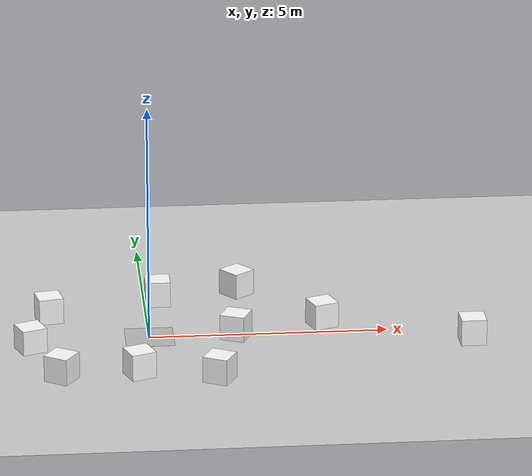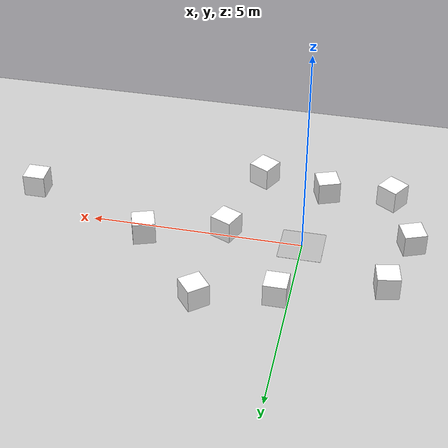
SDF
<sdf version="1.6">
 <world name="default">
  <light name="sun" type="directional">
   <pose>0 0 10 0 -0 0</pose>
   <diffuse>0.8 0.8 0.8 1</diffuse>
   <specular>0.1 0.1 0.1 1</specular>
   <attenuation>
    <range>1000</range>
    <constant>0.9</constant>
    <linear>0.01</linear>
    <quadratic>0.001</quadratic>
   </attenuation>
   <direction>-0.5 0.5 -1</direction>
  </light>
  <plugin name="SetupWorld" filename="libgazebo_plugins.so"/>
  <gravity>0 0 -9.8</gravity>
  <magnetic_field>6e-06 2.3e-05 -4.2e-05</magnetic_field>
  <atmosphere type="adiabatic"/>
  <physics name="default_physics" default="0" type="ode">
   <max_step_size>0.001</max_step_size>
   <real_time_factor>1</real_time_factor>
   <real_time_update_rate>1000</real_time_update_rate>
  </physics>
  <scene><ambient>0.4 0.4 0.4 1</ambient><background>0.7 0.7 0.7 1</background><shadows>1</shadows></scene>
  <spherical_coordinates>
   <surface_model>EARTH_WGS84</surface_model>
   <latitude_deg>0</latitude_deg>
   <longitude_deg>0</longitude_deg>
   <elevation>0</elevation>
   <heading_deg>0</heading_deg>
  </spherical_coordinates>
  <model name="collection_disk">
   <static>1</static>
   <link name="link">
    <visual name="visual">
     <geometry><box><size>1.016 1.016 0.001</size></box></geometry>
     <material>
      <script>
       <uri>model://collection_disk/materials/scripts</uri>
       <uri>model://collection_disk/materials/textures</uri>
       <name>collection_disk/Diffuse</name>
      </script>
     </material>
    </visual>
   </link>
   <plugin name="score_sim" filename="libgazebo_plugins_score.so">
    <scoreTopic>/collectionZone/score</scoreTopic>
    <collectionZoneSquareSize>1.016</collectionZoneSquareSize>
    <updateRate>0.2</updateRate>
    <robotNamespace>/</robotNamespace>
   </plugin>
  </model>
  <model name="mars_ground_plane">
   <static>1</static>
   <link name="link">
    <collision name="collision">
     <geometry><plane><normal>0 0 1</normal><size>100 100</size></plane></geometry>
     <surface><friction><ode><mu>100</mu><mu2>50</mu2></ode></friction></surface>
    </collision>
    <visual name="visual">
     <cast_shadows>0</cast_shadows>
     <geometry><plane><normal>0 0 1</normal><size>100 100</size></plane></geometry>
     <material>
      <script>
       <uri>model://media/materials/scripts</uri>
       <uri>model://media/materials/textures</uri>
       <name>MarsGroundPlane/Image</name>
      </script>
     </material>
    </visual>
   </link>
   <pose>0.292591 4.23558 0 0 -0 0</pose>
  </model>
  <model name="at0_2_0">
   <link name="link">
    <inertial>
     <mass>0.01</mass>
     <inertia><ixx>4e-05</ixx><ixy>0</ixy><ixz>0</ixz><iyy>4e-05</iyy><iyz>0</iyz><izz>4e-05</izz></inertia>
    </inertial>
    <visual name="visual">
     <geometry><box><size>0.5 0.5 0.5</size></box></geometry>
     <material>
      <script>
       <uri>model://at0/materials/scripts</uri>
       <uri>model://at0/materials/textures</uri>
       <name>at0/Diffuse</name>
      </script>
      <ambient>1 1 1 1</ambient>
      <diffuse>1 1 1 1</diffuse>
      <specular>0 0 0 1</specular>
      <emissive>0 0 0 1</emissive>
      <shader type="vertex"><normal_map>__default__</normal_map></shader>
     </material>
    </visual>
    <visual name="ModelPreview_8::link::visual_2">
     <geometry><box><size>0.528063 0.520416 0.556558</size></box></geometry>
     <material>
      <script>
       <uri>model://at0/materials/scripts</uri>
       <uri>model://at0/materials/textures</uri>
       <name>at0/Diffuse</name>
      </script>
      <ambient>1 1 1 1</ambient>
      <diffuse>1 1 1 1</diffuse>
      <specular>0 0 0 1</specular>
      <emissive>0 0 0 1</emissive>
      <shader type="vertex"><normal_map>__default__</normal_map></shader>
     </material>
    </visual>
    <visual name="ModelPreview_8::link::visual_3">
     <geometry><box><size>0.528063 0.520416 0.556558</size></box></geometry>
     <material>
      <script>
       <uri>model://at0/materials/scripts</uri>
       <uri>model://at0/materials/textures</uri>
       <name>at0/Diffuse</name>
      </script>
      <ambient>1 1 1 1</ambient>
      <diffuse>1 1 1 1</diffuse>
      <specular>0 0 0 1</specular>
      <emissive>0 0 0 1</emissive>
      <shader type="vertex"><normal_map>__default__</normal_map></shader>
     </material>
    </visual>
    <visual name="ModelPreview_8::link::visual_1">
     <geometry><box><size>0.528063 0.520416 0.556558</size></box></geometry>
     <material>
      <script>
       <uri>model://at0/materials/scripts</uri>
       <uri>model://at0/materials/textures</uri>
       <name>at0/Diffuse</name>
      </script>
      <ambient>1 1 1 1</ambient>
      <diffuse>1 1 1 1</diffuse>
      <specular>0 0 0 1</specular>
      <emissive>0 0 0 1</emissive>
      <shader type="vertex"><normal_map>__default__</normal_map></shader>
     </material>
    </visual>
    <collision name="collision">
     <geometry><box><size>0.5 0.5 0.5</size></box></geometry>
     <surface>
      <friction>
       <ode><mu>0.8</mu><mu2>0.7</mu2><fdir1>0 0 0</fdir1><slip1>0</slip1><slip2>0</slip2></ode>
       <torsional>
        <coefficient>1</coefficient>
        <patch_radius>0</patch_radius>
        <surface_radius>0</surface_radius>
        <use_patch_radius>1</use_patch_radius>
        <ode><slip>0</slip></ode>
       </torsional>
      </friction>
      <bounce><restitution_coefficient>0</restitution_coefficient><threshold>1e+06</threshold></bounce>
      <contact>
       <collide_without_contact>0</collide_without_contact>
       <collide_without_contact_bitmask>1</collide_without_contact_bitmask>
       <collide_bitmask>1</collide_bitmask>
       <ode>
        <soft_cfm>0</soft_cfm>
        <soft_erp>0.2</soft_erp>
        <kp>1e+13</kp>
        <kd>1</kd>
        <max_vel>0.01</max_vel>
        <min_depth>0</min_depth>
       </ode>
       <bullet>
        <split_impulse>1</split_impulse>
        <split_impulse_penetration_threshold>-0.01</split_impulse_penetration_threshold>
        <soft_cfm>0</soft_cfm>
        <soft_erp>0.2</soft_erp>
        <kp>1e+13</kp>
        <kd>1</kd>
       </bullet>
      </contact>
     </surface>
    </collision>
   </link>
   <static>0</static>
   <pose>-2.0593 1.17237 0.267923 0 0 -1.382</pose>
  </model>
  <model name="at0_2_1">
   <link name="link">
    <inertial>
     <mass>0.01</mass>
     <inertia><ixx>4e-05</ixx><ixy>0</ixy><ixz>0</ixz><iyy>4e-05</iyy><iyz>0</iyz><izz>4e-05</izz></inertia>
    </inertial>
    <visual name="visual">
     <geometry><box><size>0.5 0.5 0.5</size></box></geometry>
     <material>
      <script>
       <uri>model://at0/materials/scripts</uri>
       <uri>model://at0/materials/textures</uri>
       <name>at0/Diffuse</name>
      </script>
      <ambient>1 1 1 1</ambient>
      <diffuse>1 1 1 1</diffuse>
      <specular>0 0 0 1</specular>
      <emissive>0 0 0 1</emissive>
      <shader type="vertex"><normal_map>__default__</normal_map></shader>
     </material>
    </visual>
    <visual name="ModelPreview_8::link::visual_2">
     <geometry><box><size>0.528063 0.520416 0.556558</size></box></geometry>
     <material>
      <script>
       <uri>model://at0/materials/scripts</uri>
       <uri>model://at0/materials/textures</uri>
       <name>at0/Diffuse</name>
      </script>
      <ambient>1 1 1 1</ambient>
      <diffuse>1 1 1 1</diffuse>
      <specular>0 0 0 1</specular>
      <emissive>0 0 0 1</emissive>
      <shader type="vertex"><normal_map>__default__</normal_map></shader>
     </material>
    </visual>
    <visual name="ModelPreview_8::link::visual_3">
     <geometry><box><size>0.528063 0.520416 0.556558</size></box></geometry>
     <material>
      <script>
       <uri>model://at0/materials/scripts</uri>
       <uri>model://at0/materials/textures</uri>
       <name>at0/Diffuse</name>
      </script>
      <ambient>1 1 1 1</ambient>
      <diffuse>1 1 1 1</diffuse>
      <specular>0 0 0 1</specular>
      <emissive>0 0 0 1</emissive>
      <shader type="vertex"><normal_map>__default__</normal_map></shader>
     </material>
    </visual>
    <visual name="ModelPreview_8::link::visual_1">
     <geometry><box><size>0.528063 0.520416 0.556558</size></box></geometry>
     <material>
      <script>
       <uri>model://at0/materials/scripts</uri>
       <uri>model://at0/materials/textures</uri>
       <name>at0/Diffuse</name>
      </script>
      <ambient>1 1 1 1</ambient>
      <diffuse>1 1 1 1</diffuse>
      <specular>0 0 0 1</specular>
      <emissive>0 0 0 1</emissive>
      <shader type="vertex"><normal_map>__default__</normal_map></shader>
     </material>
    </visual>
    <collision name="collision">
     <geometry><box><size>0.5 0.5 0.5</size></box></geometry>
     <surface>
      <friction>
       <ode><mu>0.8</mu><mu2>0.7</mu2><fdir1>0 0 0</fdir1><slip1>0</slip1><slip2>0</slip2></ode>
       <torsional>
        <coefficient>1</coefficient>
        <patch_radius>0</patch_radius>
        <surface_radius>0</surface_radius>
        <use_patch_radius>1</use_patch_radius>
        <ode><slip>0</slip></ode>
       </torsional>
      </friction>
      <bounce><restitution_coefficient>0</restitution_coefficient><threshold>1e+06</threshold></bounce>
      <contact>
       <collide_without_contact>0</collide_without_contact>
       <collide_without_contact_bitmask>1</collide_without_contact_bitmask>
       <collide_bitmask>1</collide_bitmask>
       <ode>
        <soft_cfm>0</soft_cfm>
        <soft_erp>0.2</soft_erp>
        <kp>1e+13</kp>
        <kd>1</kd>
        <max_vel>0.01</max_vel>
        <min_depth>0</min_depth>
       </ode>
       <bullet>
        <split_impulse>1</split_impulse>
        <split_impulse_penetration_threshold>-0.01</split_impulse_penetration_threshold>
        <soft_cfm>0</soft_cfm>
        <soft_erp>0.2</soft_erp>
        <kp>1e+13</kp>
        <kd>1</kd>
       </bullet>
      </contact>
     </surface>
    </collision>
   </link>
   <static>0</static>
   <pose>3.66998 0.42092 0.262175 0 -0 0.325872</pose>
  </model>
  <model name="at0_2_2">
   <link name="link">
    <inertial>
     <mass>0.01</mass>
     <inertia><ixx>4e-05</ixx><ixy>0</ixy><ixz>0</ixz><iyy>4e-05</iyy><iyz>0</iyz><izz>4e-05</izz></inertia>
    </inertial>
    <visual name="visual">
     <geometry><box><size>0.5 0.5 0.5</size></box></geometry>
     <material>
      <script>
       <uri>model://at0/materials/scripts</uri>
       <uri>model://at0/materials/textures</uri>
       <name>at0/Diffuse</name>
      </script>
      <ambient>1 1 1 1</ambient>
      <diffuse>1 1 1 1</diffuse>
      <specular>0 0 0 1</specular>
      <emissive>0 0 0 1</emissive>
      <shader type="vertex"><normal_map>__default__</normal_map></shader>
     </material>
    </visual>
    <visual name="ModelPreview_8::link::visual_2">
     <geometry><box><size>0.528063 0.520416 0.556558</size></box></geometry>
     <material>
      <script>
       <uri>model://at0/materials/scripts</uri>
       <uri>model://at0/materials/textures</uri>
       <name>at0/Diffuse</name>
      </script>
      <ambient>1 1 1 1</ambient>
      <diffuse>1 1 1 1</diffuse>
      <specular>0 0 0 1</specular>
      <emissive>0 0 0 1</emissive>
      <shader type="vertex"><normal_map>__default__</normal_map></shader>
     </material>
    </visual>
    <visual name="ModelPreview_8::link::visual_3">
     <geometry><box><size>0.528063 0.520416 0.556558</size></box></geometry>
     <material>
      <script>
       <uri>model://at0/materials/scripts</uri>
       <uri>model://at0/materials/textures</uri>
       <name>at0/Diffuse</name>
      </script>
      <ambient>1 1 1 1</ambient>
      <diffuse>1 1 1 1</diffuse>
      <specular>0 0 0 1</specular>
      <emissive>0 0 0 1</emissive>
      <shader type="vertex"><normal_map>__default__</normal_map></shader>
     </material>
    </visual>
    <visual name="ModelPreview_8::link::visual_1">
     <geometry><box><size>0.528063 0.520416 0.556558</size></box></geometry>
     <material>
      <script>
       <uri>model://at0/materials/scripts</uri>
       <uri>model://at0/materials/textures</uri>
       <name>at0/Diffuse</name>
      </script>
      <ambient>1 1 1 1</ambient>
      <diffuse>1 1 1 1</diffuse>
      <specular>0 0 0 1</specular>
      <emissive>0 0 0 1</emissive>
      <shader type="vertex"><normal_map>__default__</normal_map></shader>
     </material>
    </visual>
    <collision name="collision">
     <geometry><box><size>0.5 0.5 0.5</size></box></geometry>
     <surface>
      <friction>
       <ode><mu>0.8</mu><mu2>0.7</mu2><fdir1>0 0 0</fdir1><slip1>0</slip1><slip2>0</slip2></ode>
       <torsional>
        <coefficient>1</coefficient>
        <patch_radius>0</patch_radius>
        <surface_radius>0</surface_radius>
        <use_patch_radius>1</use_patch_radius>
        <ode><slip>0</slip></ode>
       </torsional>
      </friction>
      <bounce><restitution_coefficient>0</restitution_coefficient><threshold>1e+06</threshold></bounce>
      <contact>
       <collide_without_contact>0</collide_without_contact>
       <collide_without_contact_bitmask>1</collide_without_contact_bitmask>
       <collide_bitmask>1</collide_bitmask>
       <ode>
        <soft_cfm>0</soft_cfm>
        <soft_erp>0.2</soft_erp>
        <kp>1e+13</kp>
        <kd>1</kd>
        <max_vel>0.01</max_vel>
        <min_depth>0</min_depth>
       </ode>
       <bullet>
        <split_impulse>1</split_impulse>
        <split_impulse_penetration_threshold>-0.01</split_impulse_penetration_threshold>
        <soft_cfm>0</soft_cfm>
        <soft_erp>0.2</soft_erp>
        <kp>1e+13</kp>
        <kd>1</kd>
       </bullet>
      </contact>
     </surface>
    </collision>
   </link>
   <static>0</static>
   <pose>1.80714 -0.100589 0.258238 0 0 -0.416965</pose>
  </model>
  <model name="at0_2_3">
   <link name="link">
    <inertial>
     <mass>0.01</mass>
     <inertia><ixx>4e-05</ixx><ixy>0</ixy><ixz>0</ixz><iyy>4e-05</iyy><iyz>0</iyz><izz>4e-05</izz></inertia>
    </inertial>
    <visual name="visual">
     <geometry><box><size>0.5 0.5 0.5</size></box></geometry>
     <material>
      <script>
       <uri>model://at0/materials/scripts</uri>
       <uri>model://at0/materials/textures</uri>
       <name>at0/Diffuse</name>
      </script>
      <ambient>1 1 1 1</ambient>
      <diffuse>1 1 1 1</diffuse>
      <specular>0 0 0 1</specular>
      <emissive>0 0 0 1</emissive>
      <shader type="vertex"><normal_map>__default__</normal_map></shader>
     </material>
    </visual>
    <visual name="ModelPreview_8::link::visual_2">
     <geometry><box><size>0.528063 0.520416 0.556558</size></box></geometry>
     <material>
      <script>
       <uri>model://at0/materials/scripts</uri>
       <uri>model://at0/materials/textures</uri>
       <name>at0/Diffuse</name>
      </script>
      <ambient>1 1 1 1</ambient>
      <diffuse>1 1 1 1</diffuse>
      <specular>0 0 0 1</specular>
      <emissive>0 0 0 1</emissive>
      <shader type="vertex"><normal_map>__default__</normal_map></shader>
     </material>
    </visual>
    <visual name="ModelPreview_8::link::visual_3">
     <geometry><box><size>0.528063 0.520416 0.556558</size></box></geometry>
     <material>
      <script>
       <uri>model://at0/materials/scripts</uri>
       <uri>model://at0/materials/textures</uri>
       <name>at0/Diffuse</name>
      </script>
      <ambient>1 1 1 1</ambient>
      <diffuse>1 1 1 1</diffuse>
      <specular>0 0 0 1</specular>
      <emissive>0 0 0 1</emissive>
      <shader type="vertex"><normal_map>__default__</normal_map></shader>
     </material>
    </visual>
    <visual name="ModelPreview_8::link::visual_1">
     <geometry><box><size>0.528063 0.520416 0.556558</size></box></geometry>
     <material>
      <script>
       <uri>model://at0/materials/scripts</uri>
       <uri>model://at0/materials/textures</uri>
       <name>at0/Diffuse</name>
      </script>
      <ambient>1 1 1 1</ambient>
      <diffuse>1 1 1 1</diffuse>
      <specular>0 0 0 1</specular>
      <emissive>0 0 0 1</emissive>
      <shader type="vertex"><normal_map>__default__</normal_map></shader>
     </material>
    </visual>
    <collision name="collision">
     <geometry><box><size>0.5 0.5 0.5</size></box></geometry>
     <surface>
      <friction>
       <ode><mu>0.8</mu><mu2>0.7</mu2><fdir1>0 0 0</fdir1><slip1>0</slip1><slip2>0</slip2></ode>
       <torsional>
        <coefficient>1</coefficient>
        <patch_radius>0</patch_radius>
        <surface_radius>0</surface_radius>
        <use_patch_radius>1</use_patch_radius>
        <ode><slip>0</slip></ode>
       </torsional>
      </friction>
      <bounce><restitution_coefficient>0</restitution_coefficient><threshold>1e+06</threshold></bounce>
      <contact>
       <collide_without_contact>0</collide_without_contact>
       <collide_without_contact_bitmask>1</collide_without_contact_bitmask>
       <collide_bitmask>1</collide_bitmask>
       <ode>
        <soft_cfm>0</soft_cfm>
        <soft_erp>0.2</soft_erp>
        <kp>1e+13</kp>
        <kd>1</kd>
        <max_vel>0.01</max_vel>
        <min_depth>0</min_depth>
       </ode>
       <bullet>
        <split_impulse>1</split_impulse>
        <split_impulse_penetration_threshold>-0.01</split_impulse_penetration_threshold>
        <soft_cfm>0</soft_cfm>
        <soft_erp>0.2</soft_erp>
        <kp>1e+13</kp>
        <kd>1</kd>
       </bullet>
      </contact>
     </surface>
    </collision>
   </link>
   <static>0</static>
   <pose>-0.309403 -1.99859 0.277831 0 -0 0.352814</pose>
  </model>
  <model name="at0_2_4">
   <link name="link">
    <inertial>
     <mass>0.01</mass>
     <inertia><ixx>4e-05</ixx><ixy>0</ixy><ixz>0</ixz><iyy>4e-05</iyy><iyz>0</iyz><izz>4e-05</izz></inertia>
    </inertial>
    <visual name="visual">
     <geometry><box><size>0.5 0.5 0.5</size></box></geometry>
     <material>
      <script>
       <uri>model://at0/materials/scripts</uri>
       <uri>model://at0/materials/textures</uri>
       <name>at0/Diffuse</name>
      </script>
      <ambient>1 1 1 1</ambient>
      <diffuse>1 1 1 1</diffuse>
      <specular>0 0 0 1</specular>
      <emissive>0 0 0 1</emissive>
      <shader type="vertex"><normal_map>__default__</normal_map></shader>
     </material>
    </visual>
    <visual name="ModelPreview_8::link::visual_2">
     <geometry><box><size>0.528063 0.520416 0.556558</size></box></geometry>
     <material>
      <script>
       <uri>model://at0/materials/scripts</uri>
       <uri>model://at0/materials/textures</uri>
       <name>at0/Diffuse</name>
      </script>
      <ambient>1 1 1 1</ambient>
      <diffuse>1 1 1 1</diffuse>
      <specular>0 0 0 1</specular>
      <emissive>0 0 0 1</emissive>
      <shader type="vertex"><normal_map>__default__</normal_map></shader>
     </material>
    </visual>
    <visual name="ModelPreview_8::link::visual_3">
     <geometry><box><size>0.528063 0.520416 0.556558</size></box></geometry>
     <material>
      <script>
       <uri>model://at0/materials/scripts</uri>
       <uri>model://at0/materials/textures</uri>
       <name>at0/Diffuse</name>
      </script>
      <ambient>1 1 1 1</ambient>
      <diffuse>1 1 1 1</diffuse>
      <specular>0 0 0 1</specular>
      <emissive>0 0 0 1</emissive>
      <shader type="vertex"><normal_map>__default__</normal_map></shader>
     </material>
    </visual>
    <visual name="ModelPreview_8::link::visual_1">
     <geometry><box><size>0.528063 0.520416 0.556558</size></box></geometry>
     <material>
      <script>
       <uri>model://at0/materials/scripts</uri>
       <uri>model://at0/materials/textures</uri>
       <name>at0/Diffuse</name>
      </script>
      <ambient>1 1 1 1</ambient>
      <diffuse>1 1 1 1</diffuse>
      <specular>0 0 0 1</specular>
      <emissive>0 0 0 1</emissive>
      <shader type="vertex"><normal_map>__default__</normal_map></shader>
     </material>
    </visual>
    <collision name="collision">
     <geometry><box><size>0.5 0.5 0.5</size></box></geometry>
     <surface>
      <friction>
       <ode><mu>0.8</mu><mu2>0.7</mu2><fdir1>0 0 0</fdir1><slip1>0</slip1><slip2>0</slip2></ode>
       <torsional>
        <coefficient>1</coefficient>
        <patch_radius>0</patch_radius>
        <surface_radius>0</surface_radius>
        <use_patch_radius>1</use_patch_radius>
        <ode><slip>0</slip></ode>
       </torsional>
      </friction>
      <bounce><restitution_coefficient>0</restitution_coefficient><threshold>1e+06</threshold></bounce>
      <contact>
       <collide_without_contact>0</collide_without_contact>
       <collide_without_contact_bitmask>1</collide_without_contact_bitmask>
       <collide_bitmask>1</collide_bitmask>
       <ode>
        <soft_cfm>0</soft_cfm>
        <soft_erp>0.2</soft_erp>
        <kp>1e+13</kp>
        <kd>1</kd>
        <max_vel>0.01</max_vel>
        <min_depth>0</min_depth>
       </ode>
       <bullet>
        <split_impulse>1</split_impulse>
        <split_impulse_penetration_threshold>-0.01</split_impulse_penetration_threshold>
        <soft_cfm>0</soft_cfm>
        <soft_erp>0.2</soft_erp>
        <kp>1e+13</kp>
        <kd>1</kd>
       </bullet>
      </contact>
     </surface>
    </collision>
   </link>
   <static>0</static>
   <pose>-1.88863 -2.06177 0.268255 0 0 -0.5676</pose>
  </model>
  <model name="at0_2_5">
   <link name="link">
    <inertial>
     <mass>0.01</mass>
     <inertia><ixx>4e-05</ixx><ixy>0</ixy><ixz>0</ixz><iyy>4e-05</iyy><iyz>0</iyz><izz>4e-05</izz></inertia>
    </inertial>
    <visual name="visual">
     <geometry><box><size>0.5 0.5 0.5</size></box></geometry>
     <material>
      <script>
       <uri>model://at0/materials/scripts</uri>
       <uri>model://at0/materials/textures</uri>
       <name>at0/Diffuse</name>
      </script>
      <ambient>1 1 1 1</ambient>
      <diffuse>1 1 1 1</diffuse>
      <specular>0 0 0 1</specular>
      <emissive>0 0 0 1</emissive>
      <shader type="vertex"><normal_map>__default__</normal_map></shader>
     </material>
    </visual>
    <visual name="ModelPreview_8::link::visual_2">
     <geometry><box><size>0.528063 0.520416 0.556558</size></box></geometry>
     <material>
      <script>
       <uri>model://at0/materials/scripts</uri>
       <uri>model://at0/materials/textures</uri>
       <name>at0/Diffuse</name>
      </script>
      <ambient>1 1 1 1</ambient>
      <diffuse>1 1 1 1</diffuse>
      <specular>0 0 0 1</specular>
      <emissive>0 0 0 1</emissive>
      <shader type="vertex"><normal_map>__default__</normal_map></shader>
     </material>
    </visual>
    <visual name="ModelPreview_8::link::visual_3">
     <geometry><box><size>0.528063 0.520416 0.556558</size></box></geometry>
     <material>
      <script>
       <uri>model://at0/materials/scripts</uri>
       <uri>model://at0/materials/textures</uri>
       <name>at0/Diffuse</name>
      </script>
      <ambient>1 1 1 1</ambient>
      <diffuse>1 1 1 1</diffuse>
      <specular>0 0 0 1</specular>
      <emissive>0 0 0 1</emissive>
      <shader type="vertex"><normal_map>__default__</normal_map></shader>
     </material>
    </visual>
    <visual name="ModelPreview_8::link::visual_1">
     <geometry><box><size>0.528063 0.520416 0.556558</size></box></geometry>
     <material>
      <script>
       <uri>model://at0/materials/scripts</uri>
       <uri>model://at0/materials/textures</uri>
       <name>at0/Diffuse</name>
      </script>
      <ambient>1 1 1 1</ambient>
      <diffuse>1 1 1 1</diffuse>
      <specular>0 0 0 1</specular>
      <emissive>0 0 0 1</emissive>
      <shader type="vertex"><normal_map>__default__</normal_map></shader>
     </material>
    </visual>
    <collision name="collision">
     <geometry><box><size>0.5 0.5 0.5</size></box></geometry>
     <surface>
      <friction>
       <ode><mu>0.8</mu><mu2>0.7</mu2><fdir1>0 0 0</fdir1><slip1>0</slip1><slip2>0</slip2></ode>
       <torsional>
        <coefficient>1</coefficient>
        <patch_radius>0</patch_radius>
        <surface_radius>0</surface_radius>
        <use_patch_radius>1</use_patch_radius>
        <ode><slip>0</slip></ode>
       </torsional>
      </friction>
      <bounce><restitution_coefficient>0</restitution_coefficient><threshold>1e+06</threshold></bounce>
      <contact>
       <collide_without_contact>0</collide_without_contact>
       <collide_without_contact_bitmask>1</collide_without_contact_bitmask>
       <collide_bitmask>1</collide_bitmask>
       <ode>
        <soft_cfm>0</soft_cfm>
        <soft_erp>0.2</soft_erp>
        <kp>1e+13</kp>
        <kd>1</kd>
        <max_vel>0.01</max_vel>
        <min_depth>0</min_depth>
       </ode>
       <bullet>
        <split_impulse>1</split_impulse>
        <split_impulse_penetration_threshold>-0.01</split_impulse_penetration_threshold>
        <soft_cfm>0</soft_cfm>
        <soft_erp>0.2</soft_erp>
        <kp>1e+13</kp>
        <kd>1</kd>
       </bullet>
      </contact>
     </surface>
    </collision>
   </link>
   <static>0</static>
   <pose>2.02301 2.35846 0.269156 0 0 -0.89385</pose>
  </model>
  <model name="at0_2_6">
   <link name="link">
    <inertial>
     <mass>0.01</mass>
     <inertia><ixx>4e-05</ixx><ixy>0</ixy><ixz>0</ixz><iyy>4e-05</iyy><iyz>0</iyz><izz>4e-05</izz></inertia>
    </inertial>
    <visual name="visual">
     <geometry><box><size>0.5 0.5 0.5</size></box></geometry>
     <material>
      <script>
       <uri>model://at0/materials/scripts</uri>
       <uri>model://at0/materials/textures</uri>
       <name>at0/Diffuse</name>
      </script>
      <ambient>1 1 1 1</ambient>
      <diffuse>1 1 1 1</diffuse>
      <specular>0 0 0 1</specular>
      <emissive>0 0 0 1</emissive>
      <shader type="vertex"><normal_map>__default__</normal_map></shader>
     </material>
    </visual>
    <visual name="ModelPreview_8::link::visual_2">
     <geometry><box><size>0.528063 0.520416 0.556558</size></box></geometry>
     <material>
      <script>
       <uri>model://at0/materials/scripts</uri>
       <uri>model://at0/materials/textures</uri>
       <name>at0/Diffuse</name>
      </script>
      <ambient>1 1 1 1</ambient>
      <diffuse>1 1 1 1</diffuse>
      <specular>0 0 0 1</specular>
      <emissive>0 0 0 1</emissive>
      <shader type="vertex"><normal_map>__default__</normal_map></shader>
     </material>
    </visual>
    <visual name="ModelPreview_8::link::visual_3">
     <geometry><box><size>0.528063 0.520416 0.556558</size></box></geometry>
     <material>
      <script>
       <uri>model://at0/materials/scripts</uri>
       <uri>model://at0/materials/textures</uri>
       <name>at0/Diffuse</name>
      </script>
      <ambient>1 1 1 1</ambient>
      <diffuse>1 1 1 1</diffuse>
      <specular>0 0 0 1</specular>
      <emissive>0 0 0 1</emissive>
      <shader type="vertex"><normal_map>__default__</normal_map></shader>
     </material>
    </visual>
    <visual name="ModelPreview_8::link::visual_1">
     <geometry><box><size>0.528063 0.520416 0.556558</size></box></geometry>
     <material>
      <script>
       <uri>model://at0/materials/scripts</uri>
       <uri>model://at0/materials/textures</uri>
       <name>at0/Diffuse</name>
      </script>
      <ambient>1 1 1 1</ambient>
      <diffuse>1 1 1 1</diffuse>
      <specular>0 0 0 1</specular>
      <emissive>0 0 0 1</emissive>
      <shader type="vertex"><normal_map>__default__</normal_map></shader>
     </material>
    </visual>
    <collision name="collision">
     <geometry><box><size>0.5 0.5 0.5</size></box></geometry>
     <surface>
      <friction>
       <ode><mu>0.8</mu><mu2>0.7</mu2><fdir1>0 0 0</fdir1><slip1>0</slip1><slip2>0</slip2></ode>
       <torsional>
        <coefficient>1</coefficient>
        <patch_radius>0</patch_radius>
        <surface_radius>0</surface_radius>
        <use_patch_radius>1</use_patch_radius>
        <ode><slip>0</slip></ode>
       </torsional>
      </friction>
      <bounce><restitution_coefficient>0</restitution_coefficient><threshold>1e+06</threshold></bounce>
      <contact>
       <collide_without_contact>0</collide_without_contact>
       <collide_without_contact_bitmask>1</collide_without_contact_bitmask>
       <collide_bitmask>1</collide_bitmask>
       <ode>
        <soft_cfm>0</soft_cfm>
        <soft_erp>0.2</soft_erp>
        <kp>1e+13</kp>
        <kd>1</kd>
        <max_vel>0.01</max_vel>
        <min_depth>0</min_depth>
       </ode>
       <bullet>
        <split_impulse>1</split_impulse>
        <split_impulse_penetration_threshold>-0.01</split_impulse_penetration_threshold>
        <soft_cfm>0</soft_cfm>
        <soft_erp>0.2</soft_erp>
        <kp>1e+13</kp>
        <kd>1</kd>
       </bullet>
      </contact>
     </surface>
    </collision>
   </link>
   <static>0</static>
   <pose>0.281817 1.92204 0.278411 0 -0 0</pose>
  </model>
  <model name="at0_2_7">
   <link name="link">
    <inertial>
     <mass>0.01</mass>
     <inertia><ixx>4e-05</ixx><ixy>0</ixy><ixz>0</ixz><iyy>4e-05</iyy><iyz>0</iyz><izz>4e-05</izz></inertia>
    </inertial>
    <visual name="visual">
     <geometry><box><size>0.5 0.5 0.474254</size></box></geometry>
     <material>
      <script>
       <uri>model://at0/materials/scripts</uri>
       <uri>model://at0/materials/textures</uri>
       <name>at0/Diffuse</name>
      </script>
      <ambient>1 1 1 1</ambient>
      <diffuse>1 1 1 1</diffuse>
      <specular>0 0 0 1</specular>
      <emissive>0 0 0 1</emissive>
      <shader type="vertex"><normal_map>__default__</normal_map></shader>
     </material>
    </visual>
    <visual name="ModelPreview_8::link::visual_2">
     <geometry><box><size>0.528063 0.520416 0.5279</size></box></geometry>
     <material>
      <script>
       <uri>model://at0/materials/scripts</uri>
       <uri>model://at0/materials/textures</uri>
       <name>at0/Diffuse</name>
      </script>
      <ambient>1 1 1 1</ambient>
      <diffuse>1 1 1 1</diffuse>
      <specular>0 0 0 1</specular>
      <emissive>0 0 0 1</emissive>
      <shader type="vertex"><normal_map>__default__</normal_map></shader>
     </material>
    </visual>
    <visual name="ModelPreview_8::link::visual_3">
     <geometry><box><size>0.528063 0.520416 0.5279</size></box></geometry>
     <material>
      <script>
       <uri>model://at0/materials/scripts</uri>
       <uri>model://at0/materials/textures</uri>
       <name>at0/Diffuse</name>
      </script>
      <ambient>1 1 1 1</ambient>
      <diffuse>1 1 1 1</diffuse>
      <specular>0 0 0 1</specular>
      <emissive>0 0 0 1</emissive>
      <shader type="vertex"><normal_map>__default__</normal_map></shader>
     </material>
    </visual>
    <visual name="ModelPreview_8::link::visual_1">
     <geometry><box><size>0.528063 0.520416 0.5279</size></box></geometry>
     <material>
      <script>
       <uri>model://at0/materials/scripts</uri>
       <uri>model://at0/materials/textures</uri>
       <name>at0/Diffuse</name>
      </script>
      <ambient>1 1 1 1</ambient>
      <diffuse>1 1 1 1</diffuse>
      <specular>0 0 0 1</specular>
      <emissive>0 0 0 1</emissive>
      <shader type="vertex"><normal_map>__default__</normal_map></shader>
     </material>
    </visual>
    <collision name="collision">
     <geometry><box><size>0.5 0.5 0.474254</size></box></geometry>
     <surface>
      <friction>
       <ode><mu>0.8</mu><mu2>0.7</mu2><fdir1>0 0 0</fdir1><slip1>0</slip1><slip2>0</slip2></ode>
       <torsional>
        <coefficient>1</coefficient>
        <patch_radius>0</patch_radius>
        <surface_radius>0</surface_radius>
        <use_patch_radius>1</use_patch_radius>
        <ode><slip>0</slip></ode>
       </torsional>
      </friction>
      <bounce><restitution_coefficient>0</restitution_coefficient><threshold>1e+06</threshold></bounce>
      <contact>
       <collide_without_contact>0</collide_without_contact>
       <collide_without_contact_bitmask>1</collide_without_contact_bitmask>
       <collide_bitmask>1</collide_bitmask>
       <ode>
        <soft_cfm>0</soft_cfm>
        <soft_erp>0.2</soft_erp>
        <kp>1e+13</kp>
        <kd>1</kd>
        <max_vel>0.01</max_vel>
        <min_depth>0</min_depth>
       </ode>
       <bullet>
        <split_impulse>1</split_impulse>
        <split_impulse_penetration_threshold>-0.01</split_impulse_penetration_threshold>
        <soft_cfm>0</soft_cfm>
        <soft_erp>0.2</soft_erp>
        <kp>1e+13</kp>
        <kd>1</kd>
       </bullet>
      </contact>
     </surface>
    </collision>
   </link>
   <static>0</static>
   <pose>-2.48251 -0.449159 0.255961 0 -0 0.368973</pose>
  </model>
  <model name="at0_2_8">
   <link name="link">
    <inertial>
     <mass>0.01</mass>
     <inertia><ixx>4e-05</ixx><ixy>0</ixy><ixz>0</ixz><iyy>4e-05</iyy><iyz>0</iyz><izz>4e-05</izz></inertia>
    </inertial>
    <visual name="visual">
     <geometry><box><size>0.5 0.5 0.5</size></box></geometry>
     <material>
      <script>
       <uri>model://at0/materials/scripts</uri>
       <uri>model://at0/materials/textures</uri>
       <name>at0/Diffuse</name>
      </script>
      <ambient>1 1 1 1</ambient>
      <diffuse>1 1 1 1</diffuse>
      <specular>0 0 0 1</specular>
      <emissive>0 0 0 1</emissive>
      <shader type="vertex"><normal_map>__default__</normal_map></shader>
     </material>
    </visual>
    <visual name="ModelPreview_8::link::visual_2">
     <geometry><box><size>0.528063 0.520416 0.556558</size></box></geometry>
     <material>
      <script>
       <uri>model://at0/materials/scripts</uri>
       <uri>model://at0/materials/textures</uri>
       <name>at0/Diffuse</name>
      </script>
      <ambient>1 1 1 1</ambient>
      <diffuse>1 1 1 1</diffuse>
      <specular>0 0 0 1</specular>
      <emissive>0 0 0 1</emissive>
      <shader type="vertex"><normal_map>__default__</normal_map></shader>
     </material>
    </visual>
    <visual name="ModelPreview_8::link::visual_3">
     <geometry><box><size>0.528063 0.520416 0.556558</size></box></geometry>
     <material>
      <script>
       <uri>model://at0/materials/scripts</uri>
       <uri>model://at0/materials/textures</uri>
       <name>at0/Diffuse</name>
      </script>
      <ambient>1 1 1 1</ambient>
      <diffuse>1 1 1 1</diffuse>
      <specular>0 0 0 1</specular>
      <emissive>0 0 0 1</emissive>
      <shader type="vertex"><normal_map>__default__</normal_map></shader>
     </material>
    </visual>
    <visual name="ModelPreview_8::link::visual_1">
     <geometry><box><size>0.528063 0.520416 0.556558</size></box></geometry>
     <material>
      <script>
       <uri>model://at0/materials/scripts</uri>
       <uri>model://at0/materials/textures</uri>
       <name>at0/Diffuse</name>
      </script>
      <ambient>1 1 1 1</ambient>
      <diffuse>1 1 1 1</diffuse>
      <specular>0 0 0 1</specular>
      <emissive>0 0 0 1</emissive>
      <shader type="vertex"><normal_map>__default__</normal_map></shader>
     </material>
    </visual>
    <collision name="collision">
     <geometry><box><size>0.5 0.5 0.5</size></box></geometry>
     <surface>
      <friction>
       <ode><mu>0.8</mu><mu2>0.7</mu2><fdir1>0 0 0</fdir1><slip1>0</slip1><slip2>0</slip2></ode>
       <torsional>
        <coefficient>1</coefficient>
        <patch_radius>0</patch_radius>
        <surface_radius>0</surface_radius>
        <use_patch_radius>1</use_patch_radius>
        <ode><slip>0</slip></ode>
       </torsional>
      </friction>
      <bounce><restitution_coefficient>0</restitution_coefficient><threshold>1e+06</threshold></bounce>
      <contact>
       <collide_without_contact>0</collide_without_contact>
       <collide_without_contact_bitmask>1</collide_without_contact_bitmask>
       <collide_bitmask>1</collide_bitmask>
       <ode>
        <soft_cfm>0</soft_cfm>
        <soft_erp>0.2</soft_erp>
        <kp>1e+13</kp>
        <kd>1</kd>
        <max_vel>0.01</max_vel>
        <min_depth>0</min_depth>
       </ode>
       <bullet>
        <split_impulse>1</split_impulse>
        <split_impulse_penetration_threshold>-0.01</split_impulse_penetration_threshold>
        <soft_cfm>0</soft_cfm>
        <soft_erp>0.2</soft_erp>
        <kp>1e+13</kp>
        <kd>1</kd>
       </bullet>
      </contact>
     </surface>
    </collision>
   </link>
   <static>0</static>
   <pose>1.2941 -2.34787 0.260698 0 0 -0.484731</pose>
  </model>
  <model name="at0_2_9">
   <link name="link">
    <inertial>
     <mass>0.01</mass>
     <inertia><ixx>4e-05</ixx><ixy>0</ixy><ixz>0</ixz><iyy>4e-05</iyy><iyz>0</iyz><izz>4e-05</izz></inertia>
    </inertial>
    <visual name="visual">
     <geometry><box><size>0.5 0.5 0.5</size></box></geometry>
     <material>
      <script>
       <uri>model://at0/materials/scripts</uri>
       <uri>model://at0/materials/textures</uri>
       <name>at0/Diffuse</name>
      </script>
      <ambient>1 1 1 1</ambient>
      <diffuse>1 1 1 1</diffuse>
      <specular>0 0 0 1</specular>
      <emissive>0 0 0 1</emissive>
      <shader type="vertex"><normal_map>__default__</normal_map></shader>
     </material>
    </visual>
    <visual name="ModelPreview_8::link::visual_2">
     <geometry><box><size>0.528063 0.520416 0.556558</size></box></geometry>
     <material>
      <script>
       <uri>model://at0/materials/scripts</uri>
       <uri>model://at0/materials/textures</uri>
       <name>at0/Diffuse</name>
      </script>
      <ambient>1 1 1 1</ambient>
      <diffuse>1 1 1 1</diffuse>
      <specular>0 0 0 1</specular>
      <emissive>0 0 0 1</emissive>
      <shader type="vertex"><normal_map>__default__</normal_map></shader>
     </material>
    </visual>
    <visual name="ModelPreview_8::link::visual_3">
     <geometry><box><size>0.528063 0.520416 0.556558</size></box></geometry>
     <material>
      <script>
       <uri>model://at0/materials/scripts</uri>
       <uri>model://at0/materials/textures</uri>
       <name>at0/Diffuse</name>
      </script>
      <ambient>1 1 1 1</ambient>
      <diffuse>1 1 1 1</diffuse>
      <specular>0 0 0 1</specular>
      <emissive>0 0 0 1</emissive>
      <shader type="vertex"><normal_map>__default__</normal_map></shader>
     </material>
    </visual>
    <visual name="ModelPreview_8::link::visual_1">
     <geometry><box><size>0.528063 0.520416 0.556558</size></box></geometry>
     <material>
      <script>
       <uri>model://at0/materials/scripts</uri>
       <uri>model://at0/materials/textures</uri>
       <name>at0/Diffuse</name>
      </script>
      <ambient>1 1 1 1</ambient>
      <diffuse>1 1 1 1</diffuse>
      <specular>0 0 0 1</specular>
      <emissive>0 0 0 1</emissive>
      <shader type="vertex"><normal_map>__default__</normal_map></shader>
     </material>
    </visual>
    <collision name="collision">
     <geometry><box><size>0.5 0.5 0.5</size></box></geometry>
     <surface>
      <friction>
       <ode><mu>0.8</mu><mu2>0.7</mu2><fdir1>0 0 0</fdir1><slip1>0</slip1><slip2>0</slip2></ode>
       <torsional>
        <coefficient>1</coefficient>
        <patch_radius>0</patch_radius>
        <surface_radius>0</surface_radius>
        <use_patch_radius>1</use_patch_radius>
        <ode><slip>0</slip></ode>
       </torsional>
      </friction>
      <bounce><restitution_coefficient>0</restitution_coefficient><threshold>1e+06</threshold></bounce>
      <contact>
       <collide_without_contact>0</collide_without_contact>
       <collide_without_contact_bitmask>1</collide_without_contact_bitmask>
       <collide_bitmask>1</collide_bitmask>
       <ode>
        <soft_cfm>0</soft_cfm>
        <soft_erp>0.2</soft_erp>
        <kp>1e+13</kp>
        <kd>1</kd>
        <max_vel>0.01</max_vel>
        <min_depth>0</min_depth>
       </ode>
       <bullet>
        <split_impulse>1</split_impulse>
        <split_impulse_penetration_threshold>-0.01</split_impulse_penetration_threshold>
        <soft_cfm>0</soft_cfm>
        <soft_erp>0.2</soft_erp>
        <kp>1e+13</kp>
        <kd>1</kd>
       </bullet>
      </contact>
     </surface>
    </collision>
   </link>
   <static>0</static>
   <pose>6.68661 -0.796484 0.284171 0 -0 0</pose>
  </model>
 </world>
</sdf>
